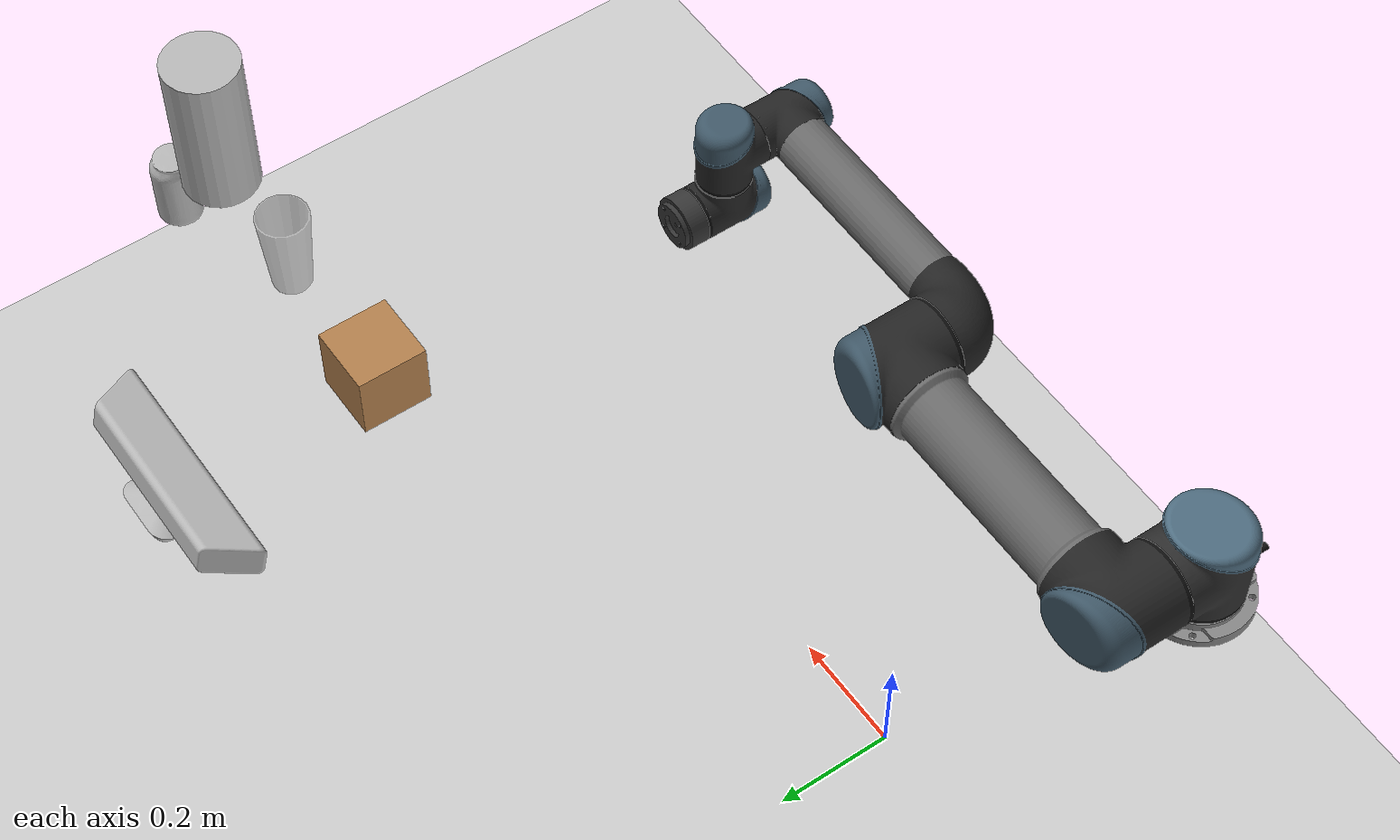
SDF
<sdf version="1.6">
 <world name="default">
  <light name="sun" type="directional">
   <pose>0 0 10 0 -0 0</pose>
   <diffuse>0.8 0.8 0.8 1</diffuse>
   <specular>0.2 0.2 0.2 1</specular>
   <attenuation>
    <range>1000</range>
    <constant>0.9</constant>
    <linear>0.01</linear>
    <quadratic>0.001</quadratic>
   </attenuation>
   <direction>-0.5 0.1 -0.9</direction>
  </light>
  <model name="ground_plane">
   <static>1</static>
   <link name="link">
    <collision name="collision">
     <geometry><plane><normal>0 0 1</normal><size>100 100</size></plane></geometry>
     <surface><friction><ode><mu>100</mu><mu2>50</mu2></ode></friction></surface>
    </collision>
    <visual name="visual">
     <cast_shadows>0</cast_shadows>
     <geometry><plane><normal>0 0 1</normal><size>100 100</size></plane></geometry>
     <material>
      <script><uri>file://media/materials/scripts/gazebo.material</uri><name>Gazebo/Grey</name></script>
     </material>
    </visual>
   </link>
  </model>
  <gravity>0 0 -9.8</gravity>
  <magnetic_field>6e-06 2.3e-05 -4.2e-05</magnetic_field>
  <atmosphere type="adiabatic"/>
  <physics name="default_physics" default="0" type="ode">
   <max_step_size>0.001</max_step_size>
   <real_time_factor>1</real_time_factor>
   <real_time_update_rate>1000</real_time_update_rate>
  </physics>
  <scene><ambient>0.4 0.4 0.4 1</ambient><background>0.7 0.7 0.7 1</background><shadows>1</shadows></scene>
  <spherical_coordinates>
   <surface_model>EARTH_WGS84</surface_model>
   <latitude_deg>0</latitude_deg>
   <longitude_deg>0</longitude_deg>
   <elevation>0</elevation>
   <heading_deg>0</heading_deg>
  </spherical_coordinates>
  <model name="wood_cube_10cm">
   <pose>0.4 0.6 0.963753 -6.4e-05 5.5e-05 -9.6e-05</pose>
   <link name="link">
    <pose>0 0 0.05 0 -0 0</pose>
    <inertial>
     <mass>0.5167</mass>
     <inertia>
      <ixx>0.000861167</ixx>
      <ixy>0</ixy>
      <ixz>0</ixz>
      <iyy>0.000861167</iyy>
      <iyz>0</iyz>
      <izz>0.000861167</izz>
     </inertia>
    </inertial>
    <collision name="collision">
     <geometry><box><size>0.1 0.1 0.1</size></box></geometry>
     <surface>
      <contact>
       <poissons_ratio>0.347</poissons_ratio>
       <elastic_modulus>8.8e+09</elastic_modulus>
       <ode><kp>100000</kp><kd>100</kd><max_vel>100</max_vel><min_depth>0.001</min_depth></ode>
      </contact>
      <friction>
       <torsional>
        <coefficient>1</coefficient>
        <use_patch_radius>0</use_patch_radius>
        <surface_radius>0.01</surface_radius>
       </torsional>
      </friction>
     </surface>
    </collision>
    <visual name="visual">
     <geometry><box><size>0.1 0.1 0.1</size></box></geometry>
     <material>
      <script><uri>file://media/materials/scripts/gazebo.material</uri><name>Gazebo/Wood</name></script>
     </material>
    </visual>
   </link>
  </model>
  <model name="kinect">
   <pose>0 1 1.6 0 0.25 -1.57</pose>
   <link name="link">
    <inertial>
     <mass>0.1</mass>
     <inertia><ixx>1</ixx><ixy>0</ixy><ixz>0</ixz><iyy>1</iyy><iyz>0</iyz><izz>1</izz></inertia>
    </inertial>
    <collision name="collision"><geometry><box><size>0.073 0.276 0.072</size></box></geometry></collision>
    <visual name="visual"><geometry><mesh><uri>model://kinect/meshes/kinect.dae</uri></mesh></geometry></visual>
    <sensor name="camera" type="depth">
     <update_rate>20</update_rate>
     <camera name="__default__">
      <horizontal_fov>1.0472</horizontal_fov>
      <image><width>640</width><height>480</height><format>R8G8B8</format></image>
      <clip><near>0.05</near><far>3</far></clip>
     </camera>
     <plugin name="camera_plugin" filename="libgazebo_ros_openni_kinect.so">
      <baseline>0.2</baseline>
      <alwaysOn>true</alwaysOn>
      <updateRate>0.0</updateRate>
      <cameraName>camera_ir</cameraName>
      <imageTopicName>/camera/depth/image_raw</imageTopicName>
      <cameraInfoTopicName>/camera/depth/camera_info</cameraInfoTopicName>
      <depthImageTopicName>/camera/depth/image_raw</depthImageTopicName>
      <depthImageInfoTopicName>/camera/depth/camera_info</depthImageInfoTopicName>
      <pointCloudTopicName>/camera/depth/points</pointCloudTopicName>
      <frameName>camera_link</frameName>
      <pointCloudCutoff>0.05</pointCloudCutoff>
      <distortionK1>0</distortionK1>
      <distortionK2>0</distortionK2>
      <distortionK3>0</distortionK3>
      <distortionT1>0</distortionT1>
      <distortionT2>0</distortionT2>
      <CxPrime>0</CxPrime>
      <Cx>0</Cx>
      <Cy>0</Cy>
      <focalLength>0</focalLength>
      <hackBaseline>0</hackBaseline>
     </plugin>
    </sensor>
    <gravity>0</gravity>
   </link>
   <static>1</static>
  </model>
  <model name="beer">
   <pose>0.8 0.6 1 0 -0 0</pose>
   <link name="link">
    <pose>0 0 0.115 0 -0 0</pose>
    <inertial>
     <mass>0.39</mass>
     <inertia><ixx>0.00058</ixx><ixy>0</ixy><ixz>0</ixz><iyy>0.00058</iyy><iyz>0</iyz><izz>0.00019</izz></inertia>
    </inertial>
    <collision name="collision">
     <geometry><cylinder><radius>0.055</radius><length>0.23</length></cylinder></geometry>
    </collision>
    <visual name="visual">
     <geometry><cylinder><radius>0.055</radius><length>0.23</length></cylinder></geometry>
     <material>
      <script>
       <uri>model://beer/materials/scripts</uri>
       <uri>model://beer/materials/textures</uri>
       <name>Beer/Diffuse</name>
      </script>
     </material>
    </visual>
   </link>
   <pose>-0.227761 0.378353 0 0 -0 0</pose>
  </model>
  <model name="coke_can">
   <pose>1 0.6 1 0 -0 0</pose>
   <link name="link">
    <inertial>
     <pose>-0.01 -0.012 0.15 0 -0 0</pose>
     <mass>0.39</mass>
     <inertia><ixx>0.00058</ixx><ixy>0</ixy><ixz>0</ixz><iyy>0.00058</iyy><iyz>0</iyz><izz>0.00019</izz></inertia>
    </inertial>
    <collision name="collision">
     <pose>0 0 -0.46 0 -0 0</pose>
     <geometry><mesh><uri>model://coke_can/meshes/coke_can.dae</uri></mesh></geometry>
     <surface>
      <friction><ode><mu>1</mu><mu2>1</mu2></ode></friction>
      <contact><ode><kp>1e+07</kp><kd>1</kd><min_depth>0.001</min_depth><max_vel>0.1</max_vel></ode></contact>
     </surface>
    </collision>
    <visual name="visual">
     <pose>0 0 -0.46 0 -0 0</pose>
     <geometry><mesh><uri>model://coke_can/meshes/coke_can.dae</uri></mesh></geometry>
    </visual>
   </link>
   <pose>-0.486836 1.31625 0 0 -0 0</pose>
  </model>
  <model name="plastic_cup">
   <pose>0.6 0.6 1 0 -0 0</pose>
   <link name="link">
    <pose>0 0 0.065 0 -0 0</pose>
    <inertial>
     <mass>0.0599</mass>
     <inertia>
      <ixx>0.000302896</ixx>
      <ixy>0</ixy>
      <ixz>0</ixz>
      <iyy>0.000302896</iyy>
      <iyz>0</iyz>
      <izz>3.28764e-05</izz>
     </inertia>
    </inertial>
    <collision name="collision">
     <geometry><mesh><uri>model://plastic_cup/meshes/plastic_cup.dae</uri></mesh></geometry>
     <surface>
      <contact>
       <poissons_ratio>0.35</poissons_ratio>
       <elastic_modulus>3.10264e+09</elastic_modulus>
       <ode><kp>100000</kp><kd>100</kd><max_vel>100</max_vel><min_depth>0.001</min_depth></ode>
      </contact>
      <friction>
       <torsional>
        <coefficient>1</coefficient>
        <use_patch_radius>0</use_patch_radius>
        <surface_radius>0.01</surface_radius>
       </torsional>
      </friction>
     </surface>
    </collision>
    <visual name="visual">
     <geometry><mesh><uri>model://plastic_cup/meshes/plastic_cup.dae</uri></mesh></geometry>
     <material>
      <script><uri>file://media/materials/scripts/gazebo.material</uri><name>Gazebo/GreyTransparent</name></script>
     </material>
    </visual>
   </link>
   <pose>-0.28067 -1.23193 0 0 -0 0</pose>
  </model>
  <light name="user_directional_light_0" type="directional">
   <pose>0 1 1.5 -1.57 0 0</pose>
   <diffuse>0.5 0.5 0.5 1</diffuse>
   <specular>0.1 0.1 0.1 1</specular>
   <direction>0.1 0.1 -0.9</direction>
   <attenuation>
    <range>20</range>
    <constant>0.5</constant>
    <linear>0.01</linear>
    <quadratic>0.001</quadratic>
   </attenuation>
  </light>
  <model name="robot">
   <link name="base_link">
    <inertial>
     <mass>4</mass>
     <inertia>
      <ixx>0.00443333</ixx>
      <ixy>0</ixy>
      <ixz>0</ixz>
      <iyy>0.00443333</iyy>
      <iyz>0</iyz>
      <izz>0.0072</izz>
     </inertia>
    </inertial>
    <collision name="base_link_collision">
     <geometry>
      <mesh>
       <scale>1 1 1</scale>
       <uri>/home/robot/workspace/tsn_sfc/catkin_wb/src/universal_robot/ur_description/meshes/ur5/collision/base.stl</uri>
      </mesh>
     </geometry>
    </collision>
    <visual name="base_link_visual">
     <geometry>
      <mesh>
       <scale>1 1 1</scale>
       <uri>/home/robot/workspace/tsn_sfc/catkin_wb/src/universal_robot/ur_description/meshes/ur5/visual/base.dae</uri>
      </mesh>
     </geometry>
    </visual>
   </link>
   <joint name="world_joint" type="fixed"><child>base_link</child><parent>world</parent></joint>
   <link name="shoulder_link">
    <pose>0 0 0.089159 0 -0 0</pose>
    <inertial>
     <mass>3.7</mass>
     <inertia>
      <ixx>0.0102675</ixx>
      <ixy>0</ixy>
      <ixz>0</ixz>
      <iyy>0.0102675</iyy>
      <iyz>0</iyz>
      <izz>0.00666</izz>
     </inertia>
    </inertial>
    <collision name="shoulder_link_collision">
     <geometry>
      <mesh>
       <scale>1 1 1</scale>
       <uri>/home/robot/workspace/tsn_sfc/catkin_wb/src/universal_robot/ur_description/meshes/ur5/collision/shoulder.stl</uri>
      </mesh>
     </geometry>
    </collision>
    <visual name="shoulder_link_visual">
     <geometry>
      <mesh>
       <scale>1 1 1</scale>
       <uri>/home/robot/workspace/tsn_sfc/catkin_wb/src/universal_robot/ur_description/meshes/ur5/visual/shoulder.dae</uri>
      </mesh>
     </geometry>
    </visual>
   </link>
   <joint name="shoulder_pan_joint" type="revolute">
    <child>shoulder_link</child>
    <parent>base_link</parent>
    <axis>
     <xyz>0 0 1</xyz>
     <limit><lower>-6.28319</lower><upper>6.28319</upper><effort>150</effort><velocity>3.15</velocity></limit>
     <dynamics>
      <damping>0</damping>
      <friction>0</friction>
      <spring_reference>0</spring_reference>
      <spring_stiffness>0</spring_stiffness>
     </dynamics>
     <use_parent_model_frame>1</use_parent_model_frame>
    </axis>
   </joint>
   <link name="upper_arm_link">
    <pose>0 0.13585 0.089159 3.14159 1.57079 3.14159</pose>
    <inertial>
     <pose>0 0 0.28 0 -0 0</pose>
     <mass>8.393</mass>
     <inertia>
      <ixx>0.226891</ixx>
      <ixy>0</ixy>
      <ixz>0</ixz>
      <iyy>0.226891</iyy>
      <iyz>0</iyz>
      <izz>0.0151074</izz>
     </inertia>
    </inertial>
    <collision name="upper_arm_link_collision">
     <geometry>
      <mesh>
       <scale>1 1 1</scale>
       <uri>/home/robot/workspace/tsn_sfc/catkin_wb/src/universal_robot/ur_description/meshes/ur5/collision/upperarm.stl</uri>
      </mesh>
     </geometry>
    </collision>
    <visual name="upper_arm_link_visual">
     <geometry>
      <mesh>
       <scale>1 1 1</scale>
       <uri>/home/robot/workspace/tsn_sfc/catkin_wb/src/universal_robot/ur_description/meshes/ur5/visual/upperarm.dae</uri>
      </mesh>
     </geometry>
    </visual>
   </link>
   <joint name="shoulder_lift_joint" type="revolute">
    <child>upper_arm_link</child>
    <parent>shoulder_link</parent>
    <axis>
     <xyz>0 1 0</xyz>
     <limit><lower>-6.28319</lower><upper>6.28319</upper><effort>150</effort><velocity>3.15</velocity></limit>
     <dynamics>
      <damping>0</damping>
      <friction>0</friction>
      <spring_reference>0</spring_reference>
      <spring_stiffness>0</spring_stiffness>
     </dynamics>
     <use_parent_model_frame>1</use_parent_model_frame>
    </axis>
   </joint>
   <link name="forearm_link">
    <pose>0.425 0.01615 0.089159 3.14159 1.57079 3.14159</pose>
    <inertial>
     <pose>0 0 0.25 0 -0 0</pose>
     <mass>2.275</mass>
     <inertia>
      <ixx>0.0494433</ixx>
      <ixy>0</ixy>
      <ixz>0</ixz>
      <iyy>0.0494433</iyy>
      <iyz>0</iyz>
      <izz>0.004095</izz>
     </inertia>
    </inertial>
    <collision name="forearm_link_collision">
     <geometry>
      <mesh>
       <scale>1 1 1</scale>
       <uri>/home/robot/workspace/tsn_sfc/catkin_wb/src/universal_robot/ur_description/meshes/ur5/collision/forearm.stl</uri>
      </mesh>
     </geometry>
    </collision>
    <visual name="forearm_link_visual">
     <geometry>
      <mesh>
       <scale>1 1 1</scale>
       <uri>/home/robot/workspace/tsn_sfc/catkin_wb/src/universal_robot/ur_description/meshes/ur5/visual/forearm.dae</uri>
      </mesh>
     </geometry>
    </visual>
   </link>
   <joint name="elbow_joint" type="revolute">
    <child>forearm_link</child>
    <parent>upper_arm_link</parent>
    <axis>
     <xyz>0 1 0</xyz>
     <limit><lower>-3.14159</lower><upper>3.14159</upper><effort>150</effort><velocity>3.15</velocity></limit>
     <dynamics>
      <damping>0</damping>
      <friction>0</friction>
      <spring_reference>0</spring_reference>
      <spring_stiffness>0</spring_stiffness>
     </dynamics>
     <use_parent_model_frame>1</use_parent_model_frame>
    </axis>
   </joint>
   <link name="wrist_1_link">
    <pose>0.81725 0.01615 0.089159 3.14159 -0 3.14159</pose>
    <inertial>
     <mass>1.219</mass>
     <inertia>
      <ixx>0.111173</ixx>
      <ixy>0</ixy>
      <ixz>0</ixz>
      <iyy>0.111173</iyy>
      <iyz>0</iyz>
      <izz>0.21942</izz>
     </inertia>
    </inertial>
    <collision name="wrist_1_link_collision">
     <geometry>
      <mesh>
       <scale>1 1 1</scale>
       <uri>/home/robot/workspace/tsn_sfc/catkin_wb/src/universal_robot/ur_description/meshes/ur5/collision/wrist1.stl</uri>
      </mesh>
     </geometry>
    </collision>
    <visual name="wrist_1_link_visual">
     <geometry>
      <mesh>
       <scale>1 1 1</scale>
       <uri>/home/robot/workspace/tsn_sfc/catkin_wb/src/universal_robot/ur_description/meshes/ur5/visual/wrist1.dae</uri>
      </mesh>
     </geometry>
    </visual>
   </link>
   <joint name="wrist_1_joint" type="revolute">
    <child>wrist_1_link</child>
    <parent>forearm_link</parent>
    <axis>
     <xyz>0 1 0</xyz>
     <limit><lower>-6.28319</lower><upper>6.28319</upper><effort>28</effort><velocity>3.2</velocity></limit>
     <dynamics>
      <damping>0</damping>
      <friction>0</friction>
      <spring_reference>0</spring_reference>
      <spring_stiffness>0</spring_stiffness>
     </dynamics>
     <use_parent_model_frame>1</use_parent_model_frame>
    </axis>
   </joint>
   <link name="wrist_2_link">
    <pose>0.81725 0.10915 0.089159 3.14159 -0 3.14159</pose>
    <inertial>
     <mass>1.219</mass>
     <inertia>
      <ixx>0.111173</ixx>
      <ixy>0</ixy>
      <ixz>0</ixz>
      <iyy>0.111173</iyy>
      <iyz>0</iyz>
      <izz>0.21942</izz>
     </inertia>
    </inertial>
    <collision name="wrist_2_link_collision">
     <geometry>
      <mesh>
       <scale>1 1 1</scale>
       <uri>/home/robot/workspace/tsn_sfc/catkin_wb/src/universal_robot/ur_description/meshes/ur5/collision/wrist2.stl</uri>
      </mesh>
     </geometry>
    </collision>
    <visual name="wrist_2_link_visual">
     <geometry>
      <mesh>
       <scale>1 1 1</scale>
       <uri>/home/robot/workspace/tsn_sfc/catkin_wb/src/universal_robot/ur_description/meshes/ur5/visual/wrist2.dae</uri>
      </mesh>
     </geometry>
    </visual>
   </link>
   <joint name="wrist_2_joint" type="revolute">
    <child>wrist_2_link</child>
    <parent>wrist_1_link</parent>
    <axis>
     <xyz>0 0 -1</xyz>
     <limit><lower>-6.28319</lower><upper>6.28319</upper><effort>28</effort><velocity>3.2</velocity></limit>
     <dynamics>
      <damping>0</damping>
      <friction>0</friction>
      <spring_reference>0</spring_reference>
      <spring_stiffness>0</spring_stiffness>
     </dynamics>
     <use_parent_model_frame>1</use_parent_model_frame>
    </axis>
   </joint>
   <link name="wrist_3_link">
    <pose>0.81725 0.10915 -0.005491 3.14159 -0 3.14159</pose>
    <inertial>
     <mass>0.1879</mass>
     <inertia>
      <ixx>0.0171365</ixx>
      <ixy>0</ixy>
      <ixz>0</ixz>
      <iyy>0.0171365</iyy>
      <iyz>0</iyz>
      <izz>0.033822</izz>
     </inertia>
    </inertial>
    <collision name="wrist_3_link_collision">
     <geometry>
      <mesh>
       <scale>1 1 1</scale>
       <uri>/home/robot/workspace/tsn_sfc/catkin_wb/src/universal_robot/ur_description/meshes/ur5/collision/wrist3.stl</uri>
      </mesh>
     </geometry>
    </collision>
    <collision name="wrist_3_link_fixed_joint_lump__ee_link_collision_1">
     <pose>-0 0.0723 0 0 -0 1.5708</pose>
     <geometry><box><size>0.01 0.01 0.01</size></box></geometry>
    </collision>
    <visual name="wrist_3_link_visual">
     <geometry>
      <mesh>
       <scale>1 1 1</scale>
       <uri>/home/robot/workspace/tsn_sfc/catkin_wb/src/universal_robot/ur_description/meshes/ur5/visual/wrist3.dae</uri>
      </mesh>
     </geometry>
    </visual>
   </link>
   <joint name="wrist_3_joint" type="revolute">
    <child>wrist_3_link</child>
    <parent>wrist_2_link</parent>
    <axis>
     <xyz>0 1 0</xyz>
     <limit><lower>-6.28319</lower><upper>6.28319</upper><effort>28</effort><velocity>3.2</velocity></limit>
     <dynamics>
      <damping>0</damping>
      <friction>0</friction>
      <spring_reference>0</spring_reference>
      <spring_stiffness>0</spring_stiffness>
     </dynamics>
     <use_parent_model_frame>1</use_parent_model_frame>
    </axis>
   </joint>
   <static>0</static>
   <plugin name="ros_control" filename="libgazebo_ros_control.so"><robotNamespace>/</robotNamespace></plugin>
   <plugin filename="libgazebo_ros_moveit_planning_scene.so" name="gazebo_ros_moveit_planning_scene">
    <topicName>/planning_scene</topicName>
    <sceneName>laboratory</sceneName>
    <robotName>ur5</robotName>
    <updatePeriod>0.5</updatePeriod>
   </plugin>
   <pose>-0.5 0 1.1 0 -0 0</pose>
  </model>
 </world>
</sdf>
